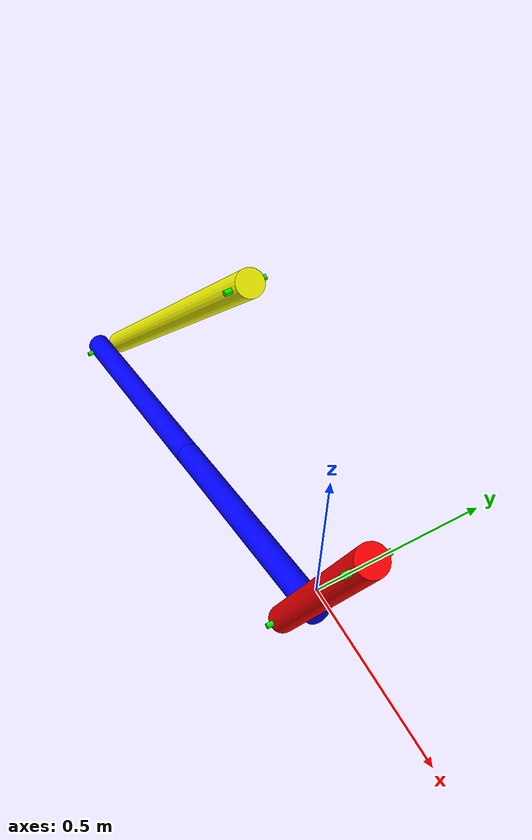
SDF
<sdf version='1.7'>
  <model name='asymmetric_linkage'>

    <!-- Crank Side -->

    <link name='Crank'>
      <pose>0 0.15 0 0 0.3490658503988659 0</pose>
      <inertial>
        <pose>0 0 -0.5 0 0 0</pose>
        <mass>10</mass>
        <inertia>
          <!-- The inertia is based off the cylinder described in the
               Crank_visual tag: radius=0.05m length=1.1m mass=10kg-->
          <ixx>1.01458333</ixx><iyy>1.01458333</iyy><izz>0.0125</izz>
          <ixy>0</ixy><ixz>0</ixz><iyz>0</iyz>
        </inertia>
      </inertial>
      <visual name='Crank_visual'>
        <pose>0 0 -0.5 0 0 0</pose>
        <geometry>
          <cylinder>
            <length>1.1</length>
            <radius>0.05</radius>
          </cylinder>
        </geometry>
        <material>
          <diffuse>1 0 0 1</diffuse>
        </material>
      </visual>
      <visual name='Crank_pivot_visual'>
        <pose>0 0 0 1.57 0 0</pose>
        <geometry>
          <cylinder>
            <radius>0.01</radius>
            <length>0.15</length>
          </cylinder>
        </geometry>
        <material>
          <diffuse>0 1 0 1</diffuse>
        </material>
      </visual>
    </link>
    <joint name='CrankJoint' type='revolute'>
      <child>Crank</child>
      <parent>world</parent>
      <axis>
        <xyz>0 1 0</xyz>
        <limit>
          <!-- Drake parses a zero effort joint as an un-actuated joint. -->
        </limit>
        <dynamics>
          <damping>0.5</damping>
        </dynamics>
        <use_parent_model_frame>1</use_parent_model_frame>
      </axis>
    </joint>

    <link name='CrankCoupler'>
      <pose relative_to="Crank">0 0.1 -1 0 0.9023352232810684 0</pose>
      <inertial>
        <pose>0 0 -0.5 0 0 0</pose>
        <mass>10</mass>
        <inertia>
          <!-- The inertia is based off the cylinder described in the
               CrankCoupler_visual tag: radius=0.05m length=1.05m mass=10kg -->
          <ixx>0.925</ixx><iyy>0.925</iyy><izz>0.0125</izz>
          <ixy>0</ixy><ixz>0</ixz><iyz>0</iyz>
        </inertia>
      </inertial>
      <visual name='CrankCoupler_visual'>
        <pose>0 0 -0.475 0 0 0</pose>
        <geometry>
          <cylinder>
            <length>1.05</length>
            <radius>0.05</radius>
          </cylinder>
        </geometry>
        <material>
          <diffuse>0 0 1 1</diffuse>
        </material>
      </visual>
      <visual name='CrankCoupler_pivot_visual'>
        <pose>0 -0.05 0 1.57 0 0</pose>
        <geometry>
          <cylinder>
            <radius>0.01</radius>
            <length>0.25</length>
          </cylinder>
        </geometry>
        <material>
          <diffuse>0 1 0 1</diffuse>
        </material>
      </visual>
    </link>

    <joint name='CrankCouplerJoint' type='revolute'>
      <parent>Crank</parent>
      <child>CrankCoupler</child>
      <!-- Pose X_CJ of the joint frame J in the frame C of the child link -->
      <pose>0 0 0 0 0 0</pose>
      <axis>
        <xyz>0 1 0</xyz>
        <limit>
          <!-- No limit provided. sdformat defaults to -1, which we parse as
               an actuated joint. -->
          <effort>0</effort>
        </limit>
        <dynamics>
          <damping>0.5</damping>
        </dynamics>
        <use_parent_model_frame>1</use_parent_model_frame>
      </axis>
    </joint>

    <!-- Rocker Side -->

    <link name='Rocker'>
      <!-- The origin of the Crank frame is defined to be coincident with
           the origin of the x-z plane in the world frame. -->
      <pose>-1 0.35 0 0 0.6684611035138281 0</pose>
      <inertial>
        <pose>0 0 -1 0 0 0</pose>
        <mass>20</mass>
        <inertia>
          <!-- The inertia is based off the cylinder described in the
               Rocker_visual tag: radius=0.05m length=2.1m mass=20kg -->
          <ixx>7.3625</ixx><iyy>7.3625</iyy><izz>0.025</izz>
          <ixy>0</ixy><ixz>0</ixz><iyz>0</iyz>
        </inertia>
      </inertial>
      <visual name='Rocker_visual'>
        <pose>0 0 -1 0 0 0</pose>
        <geometry>
          <cylinder>
            <length>2.1</length>
            <radius>0.05</radius>
          </cylinder>
        </geometry>
        <material>
          <diffuse>1 1 0 1</diffuse>
        </material>
      </visual>
      <visual name='Rocker_pivot_visual'>
        <pose>0 0 0 1.57 0 0</pose>
        <geometry>
          <cylinder>
            <radius>0.01</radius>
            <length>0.15</length>
          </cylinder>
        </geometry>
        <material>
          <diffuse>0 1 0 1</diffuse>
        </material>
      </visual>
    </link>
    <joint name='RockerJoint' type='revolute'>
      <child>Rocker</child>
      <parent>world</parent>
      <axis>
        <xyz>0 1 0</xyz>
        <limit>
          <!-- Drake parses a zero effort joint as an un-actuated joint. -->
          <effort>0</effort>
        </limit>
        <dynamics>
          <damping>0.5</damping>
        </dynamics>
        <use_parent_model_frame>1</use_parent_model_frame>
      </axis>
    </joint>

    <link name='RockerCoupler'>
      <pose relative_to="Rocker">0 -0.1 -2 0 -2.558652683423687 0</pose>
      <inertial>
        <pose>0 0 -0.5 0 0 0</pose>
        <mass>10</mass>
        <inertia>
          <!-- The inertia is based off the cylinder described in the
               RockerCoupler_visual tag: radius=0.05m length=1.05m mass=10kg -->
          <ixx>0.925</ixx><iyy>0.925</iyy><izz>0.0125</izz>
          <ixy>0</ixy><ixz>0</ixz><iyz>0</iyz>
        </inertia>
      </inertial>
      <visual name='RockerCoupler_visual'>
        <pose>0 0 -0.475 0 0 0</pose>
        <geometry>
          <cylinder>
            <length>1.05</length>
            <radius>0.05</radius>
          </cylinder>
        </geometry>
        <material>
          <diffuse>0 0 1 1</diffuse>
        </material>
      </visual>
      <visual name='RockerCoupler_pivot_visual'>
        <pose>0 0.05 0 1.57 0 0</pose>
        <geometry>
          <cylinder>
            <radius>0.01</radius>
            <length>0.25</length>
          </cylinder>
        </geometry>
        <material>
          <diffuse>0 1 0 1</diffuse>
        </material>
      </visual>
    </link>

    <joint name='RockerCouplerJoint' type='revolute'>
      <parent>Rocker</parent>
      <child>RockerCoupler</child>
      <!-- Pose X_CJ of the joint frame J in the frame C of the child link -->
      <pose>0 0 0 0 0 0</pose>
      <axis>
        <xyz>0 1 0</xyz>
        <limit>
          <!-- No limit provided. sdformat defaults to -1, which we parse as
               an actuated joint. -->
          <effort>0</effort>
        </limit>
        <dynamics>
          <damping>0.5</damping>
        </dynamics>
        <use_parent_model_frame>1</use_parent_model_frame>
      </axis>
    </joint>

    <!-- Creates two coincident frames on the two sides to complete the weld
         of the coupler arm with a LinearBushingRollPitchYaw force element -->

    <frame name="CrankCouplerWeld" attached_to="CrankCoupler">
      <pose relative_to="CrankCoupler">0 0 -1 0 0 0</pose>
    </frame>

    <frame name="RockerCouplerWeld" attached_to="RockerCoupler">
      <pose relative_to="RockerCoupler">0 0 -1 0 0 0</pose>
    </frame>

  </model>
</sdf>
